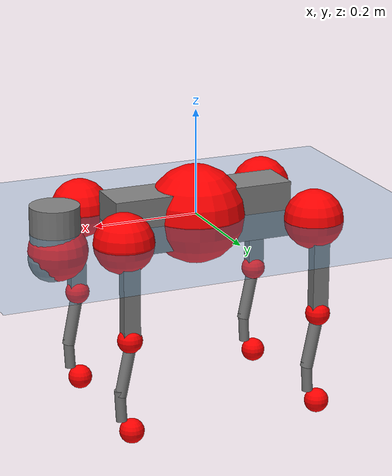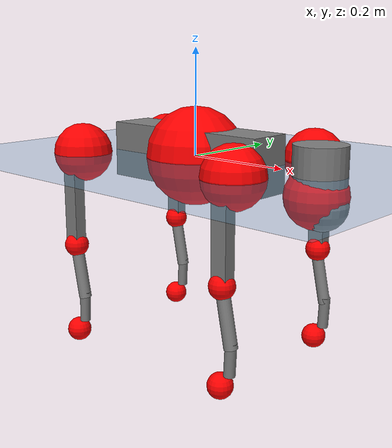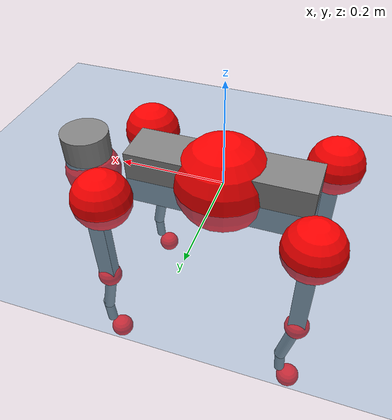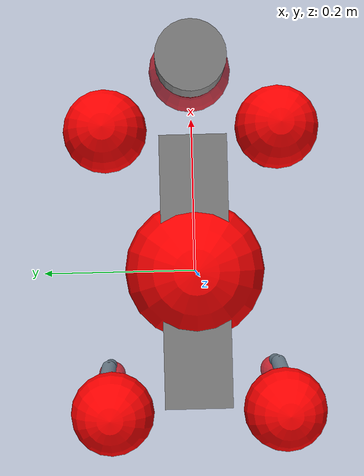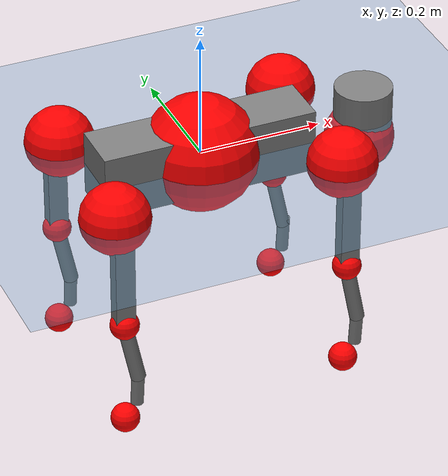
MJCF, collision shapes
<mujoco model="go2">
  <compiler angle="radian" assetdir="assets" balanceinertia="true" inertiafromgeom="false"/>

  <option timestep="0.005" density="1.2" viscosity="2e-05"/>

  <size nkey="1"/>

  <visual>
    <quality shadowsize="8192"/>
    <map shadowclip="0.5"/>
  </visual>

  <default>
    <default class="/">
      <geom contype="0" conaffinity="0" group="1" solref="-1000 -80"/>
      <site size="0.01 0.005 0.005" group="5"/>
      <general forcelimited="true" biastype="affine" gainprm="20" biasprm="0 -20 -0.5"/>
      <default class="go2">
        <joint armature="0.01" damping="0.01" frictionloss="0.2"/>
        <geom condim="1" margin="0.001"/>
        <default class="visual">
          <geom type="mesh" group="2"/>
        </default>
        <default class="collision">
          <geom group="3"/>
          <default class="foot">
            <geom size="0.022 0 0" condim="6" priority="1" friction="0.8 0.02 0.01" solimp="0.015 1 0.022"/>
          </default>
        </default>
        <default class="reward_collision_sphere">
          <geom group="5" rgba="1 0 0 1"/>
        </default>
      </default>
    </default>
  </default>

  <asset>
    <texture type="skybox" colorspace="auto" name="//unnamed_texture_0" builtin="gradient" rgb1="0.95 0.95 0.95" rgb2="0.95 0.95 0.95" width="100" height="600"/>
    <texture type="2d" colorspace="auto" name="texplane" builtin="checker" rgb1="0.345 0.575 0.748" rgb2="0.345 0.575 0.748" markrgb="1 1 1" width="512" height="512"/>
    <material name="MatPlane" class="/" texture="texplane" texuniform="true" texrepeat="2 2" specular="0.9"/>
    <material name="metal" class="/" rgba="0.9 0.95 0.95 1"/>
    <material name="black" class="/" rgba="0 0 0 1"/>
    <material name="white" class="/"/>
    <material name="gray" class="/" rgba="0.671705 0.692426 0.77427 1"/>
    <mesh name="base_0" class="/" file="base_0.obj"/>
    <mesh name="base_1" class="/" file="base_1.obj"/>
    <mesh name="base_2" class="/" file="base_2.obj"/>
    <mesh name="base_3" class="/" file="base_3.obj"/>
    <mesh name="base_4" class="/" file="base_4.obj"/>
    <mesh name="hip_0" class="/" file="hip_0.obj"/>
    <mesh name="hip_1" class="/" file="hip_1.obj"/>
    <mesh name="thigh_0" class="/" file="thigh_0.obj"/>
    <mesh name="thigh_1" class="/" file="thigh_1.obj"/>
    <mesh name="thigh_mirror_0" class="/" file="thigh_mirror_0.obj"/>
    <mesh name="thigh_mirror_1" class="/" file="thigh_mirror_1.obj"/>
    <mesh name="calf_0" class="/" file="calf_0.obj"/>
    <mesh name="calf_1" class="/" file="calf_1.obj"/>
    <mesh name="calf_mirror_0" class="/" file="calf_mirror_0.obj"/>
    <mesh name="calf_mirror_1" class="/" file="calf_mirror_1.obj"/>
    <mesh name="foot" class="/" file="foot.obj"/>
  </asset>

  <worldbody>
    <geom name="floor" class="/" size="100 100 0.125" type="plane" group="0" material="MatPlane"/>
    <light name="toplight_shadow" class="/" pos="0 0 5" dir="0.0990148 0.0990148 -0.990148" type="directional" ambient="0.04 0.04 0.04" diffuse="0.55 0.55 0.55" specular="0.12 0.12 0.12"/>
    <light name="toplight_fill" class="/" pos="0 0 5" dir="0.0990148 0.0990148 -0.990148" type="directional" castshadow="false" ambient="0.04 0.04 0.04" diffuse="0.3 0.3 0.3" specular="0.08 0.08 0.08"/>
    <body name="trunk" childclass="go2" pos="2.17297e-05 1.31051e-05 0.000864011" quat="1 2.7919e-05 -4.58437e-05 -3.68298e-05">
      <inertial pos="0.0200973 -0.000217785 -0.00528745" quat="-0.000324759 0.713446 -0.00184236 0.700708" mass="5.62461" diaginertia="0.0928603 0.091016 0.00992007"/>
      <joint name="//unnamed_joint_0" type="free" armature="0" damping="0" frictionloss="0"/>
      <geom name="//unnamed_geom_1" class="visual" material="black" mesh="base_0"/>
      <geom name="//unnamed_geom_2" class="visual" material="black" mesh="base_1"/>
      <geom name="//unnamed_geom_3" class="visual" material="black" mesh="base_2"/>
      <geom name="//unnamed_geom_4" class="visual" material="white" mesh="base_3"/>
      <geom name="//unnamed_geom_5" class="visual" material="gray" mesh="base_4"/>
      <geom name="trunk_1" class="collision" size="0.174998 0.0434937 0.0530298" type="box"/>
      <geom name="trunk_2" class="collision" size="0.0465173 0.0418656" pos="0.277058 0 0.00834058" type="cylinder"/>
      <geom name="trunk_3" class="collision" size="0.0437263" pos="0.284835 0 -0.0500435"/>
      <geom name="//unnamed_geom_9" class="reward_collision_sphere" size="0.0930347"/>
      <geom name="//unnamed_geom_10" class="reward_collision_sphere" size="0.0558208" pos="0.272197 0 -0.0375326"/>
      <site name="imu" pos="-0.0235497 0.00312692 0.0359712" size="0.00930347"/>
      <camera name="track" pos="0 -1.9697 0" quat="0.707107 0.707107 0 0" mode="trackcom"/>
      <camera name="ego_camera" pos="0.303306 0 0.0375326" quat="-0.5 -0.5 0.5 0.5"/>
      <body name="FL_hip" pos="0.187611 0.0464841 0.00186272" quat="1 -6.34125e-05 -0.000246172 -0.000102784">
        <inertial pos="-0.00463793 0.00205614 0.000417411" quat="0.497022 0.499259 0.505447 0.498229" mass="0.539704" diaginertia="0.000762781 0.000553032 0.000191002"/>
        <joint name="FL_hip_joint" pos="0 0 0" axis="0.999994 -0.00296256 0.00183523" stiffness="0.0017776" range="-1.04771 1.04766" armature="0.00896901" damping="0.00450549" frictionloss="0.192051"/>
        <geom name="//unnamed_geom_11" class="visual" material="metal" mesh="hip_0"/>
        <geom name="//unnamed_geom_12" class="visual" material="gray" mesh="hip_1"/>
        <geom name="//unnamed_geom_13" class="collision" size="0.042796 0.0186069" pos="0 0.0787879 0" quat="0.707107 0.707107 0 0" type="cylinder"/>
        <geom name="//unnamed_geom_14" class="reward_collision_sphere" size="0.0558208" pos="0 0.0689394 0"/>
        <body name="FL_thigh" pos="-0.000438649 0.0943801 0.00152907" quat="1 -0.00020077 -3.75034e-05 4.93972e-05">
          <inertial pos="-0.00405809 -0.0217191 -0.0266398" quat="0.829531 0.0847578 -0.0200588 0.551627" mass="0.937691" diaginertia="0.00518382 0.00538567 0.000355339"/>
          <joint name="FL_thigh_joint" pos="0 0 0" axis="-9.79883e-05 1 -0.000671307" stiffness="0.00376085" range="-1.55086 3.48677" armature="0.00949855" damping="0.00752037" frictionloss="0.183369"/>
          <geom name="//unnamed_geom_15" class="visual" material="metal" mesh="thigh_0"/>
          <geom name="//unnamed_geom_16" class="visual" material="gray" mesh="thigh_1"/>
          <geom name="//unnamed_geom_17" class="collision" size="0.0990819 0.0113967 0.0158159" pos="0 0 -0.0888272" quat="0.707107 0 0.707107 0" type="box"/>
          <body name="FL_calf" pos="0.000260167 -0.00144019 -0.178357" quat="1 0.000101456 -4.12642e-05 -3.21083e-05">
            <inertial pos="0.00647782 -0.000489291 -0.117213" quat="0.710543 0.00162514 -0.0044261 0.703638" mass="0.195939" diaginertia="0.00129407 0.00136481 2.16041e-05"/>
            <joint name="FL_calf_joint" pos="0 0 0" axis="0.00583098 0.999982 0.001695" stiffness="0.000685579" range="-2.72795 -0.840986" armature="0.00926545" damping="0" frictionloss="0.194209"/>
            <geom name="//unnamed_geom_18" class="visual" material="gray" mesh="calf_0"/>
            <geom name="//unnamed_geom_19" class="visual" material="black" mesh="calf_1"/>
            <geom name="FL_calf0" class="collision" size="0.0111642 0.0558208" pos="0.00777707 0 -0.0500435" quat="0.994493 0 -0.104807 0" type="cylinder"/>
            <geom name="//unnamed_geom_21" class="collision" size="0.0102338 0.0302363" pos="0.0194427 0 -0.123441" quat="0.999688 0 0.0249974 0" type="cylinder"/>
            <geom name="//unnamed_geom_22" class="visual" pos="0 0 -0.177654" quat="1 0 0 0" material="black" mesh="foot"/>
            <geom name="FL_foot" class="foot" size="0.0171398" pos="-0.00194427 0 -0.177654"/>
            <geom name="//unnamed_geom_24" class="reward_collision_sphere" size="0.0232587"/>
            <geom name="//unnamed_geom_25" class="reward_collision_sphere" size="0.0232587" pos="-0.00194427 0 -0.177654"/>
            <site name="FL_foot" class="foot" pos="-0.00194427 0 -0.177654" size="0.00930347"/>
          </body>
        </body>
      </body>
      <body name="FR_hip" pos="0.188387 -0.0444505 0.000133375" quat="1 4.95564e-05 0.000420606 0.000129133">
        <inertial pos="-0.00511765 -0.00207276 -0.000665933" quat="0.498164 0.505914 0.49933 0.496542" mass="0.551203" diaginertia="0.000773414 0.000557605 0.000193817"/>
        <joint name="FR_hip_joint" pos="0 0 0" axis="1 0.000328433 -0.000396286" range="-1.06491 1.05214" armature="0.00924316" damping="0.0144965" frictionloss="0.193872"/>
        <geom name="//unnamed_geom_26" class="visual" pos="0 1.31363e-09 5.63441e-08" quat="4.63268e-05 1 0 0" material="metal" mesh="hip_0"/>
        <geom name="//unnamed_geom_27" class="visual" pos="0 2.12954e-09 -1.39361e-07" quat="4.63268e-05 1 0 0" material="gray" mesh="hip_1"/>
        <geom name="//unnamed_geom_28" class="collision" size="0.042796 0.0186069" pos="0 -0.0787879 0" quat="0.707107 0.707107 0 0" type="cylinder"/>
        <geom name="//unnamed_geom_29" class="reward_collision_sphere" size="0.0558208" pos="0 -0.0689394 0"/>
        <body name="FR_thigh" pos="0.000661838 -0.0943538 0.000683958" quat="1 -6.11874e-05 6.01077e-05 -2.62049e-05">
          <inertial pos="-0.00377272 0.0221027 -0.02719" quat="0.551104 -0.0199755 0.0851727 0.829838" mass="0.937266" diaginertia="0.00520322 0.00544863 0.000357851"/>
          <joint name="FR_thigh_joint" pos="0 0 0" axis="-0.00129382 -0.999994 0.00330301" range="-3.48218 1.57282" armature="0.00940335" damping="0.0152678" frictionloss="0.182054"/>
          <geom name="//unnamed_geom_30" class="visual" material="metal" mesh="thigh_mirror_0"/>
          <geom name="//unnamed_geom_31" class="visual" material="gray" mesh="thigh_mirror_1"/>
          <geom name="//unnamed_geom_32" class="collision" size="0.0990819 0.0113967 0.0158159" pos="0 0 -0.0888272" quat="0.707107 0 0.707107 0" type="box"/>
          <body name="FR_calf" pos="-0.000410689 -8.16835e-05 -0.178057" quat="1 -0.000158526 -4.03145e-06 -0.000102634">
            <inertial pos="0.0059355 0.000207104 -0.118025" quat="0.702031 -0.0038014 0.00190984 0.712134" mass="0.192606" diaginertia="0.00127973 0.00135073 2.13627e-05"/>
            <joint name="FR_calf_joint" pos="0 0 0" axis="0.00242673 -0.999979 0.00598137" range="0.844893 2.73416" armature="0.00936833" damping="0.00687465" frictionloss="0.181753"/>
            <geom name="//unnamed_geom_33" class="visual" material="gray" mesh="calf_mirror_0"/>
            <geom name="//unnamed_geom_34" class="visual" material="black" mesh="calf_mirror_1"/>
            <geom name="FR_calf0" class="collision" size="0.0120945 0.0558208" pos="0.00972133 0 -0.0500435" quat="0.995004 0 -0.0998334 0" type="cylinder"/>
            <geom name="//unnamed_geom_36" class="collision" size="0.0102338 0.0302363" pos="0.0194427 0 -0.123441" quat="0.999688 0 0.0249974 0" type="cylinder"/>
            <geom name="//unnamed_geom_37" class="visual" pos="0 0 -0.177654" quat="1 0 0 0" material="black" mesh="foot"/>
            <geom name="FR_foot" class="foot" size="0.021235" pos="-0.00194427 0 -0.177654"/>
            <geom name="//unnamed_geom_39" class="reward_collision_sphere" size="0.0232587"/>
            <geom name="//unnamed_geom_40" class="reward_collision_sphere" size="0.0232587" pos="-0.00194427 0 -0.177654"/>
            <site name="FR_foot" class="foot" pos="-0.00194427 0 -0.177654" size="0.00930347"/>
          </body>
        </body>
      </body>
      <body name="RL_hip" pos="-0.188596 0.0454434 -0.000617026" quat="1 -0.000139288 -7.96895e-05 7.98783e-05">
        <inertial pos="0.00562711 0.00290124 0.000389209" quat="0.504136 0.496413 0.499441 0.49998" mass="0.541803" diaginertia="0.00076991 0.00054608 0.000194122"/>
        <joint name="RL_hip_joint" pos="0 0 0" axis="-0.999877 -0.0148173 -0.0051478" stiffness="0.00261278" range="-1.0401 1.05431" armature="0.00934117" damping="0.0167443" frictionloss="0.181282"/>
        <geom name="//unnamed_geom_41" class="visual" pos="-1.20285e-09 0 -2.35787e-07" quat="4.63268e-05 0 1 0" material="metal" mesh="hip_0"/>
        <geom name="//unnamed_geom_42" class="visual" pos="-1.94997e-09 0 -2.09109e-07" quat="4.63268e-05 0 1 0" material="gray" mesh="hip_1"/>
        <geom name="//unnamed_geom_43" class="collision" size="0.042796 0.0186069" pos="0 0.0787879 0" quat="0.707107 0.707107 0 0" type="cylinder"/>
        <geom name="//unnamed_geom_44" class="reward_collision_sphere" size="0.0558208" pos="0 0.0689394 0"/>
        <body name="RL_thigh" pos="0.000159717 0.0945927 -0.000552165" quat="1 -0.000283473 4.16996e-05 -9.57044e-05">
          <inertial pos="-0.003797 -0.020887 -0.027305" quat="0.829691 0.0845689 -0.020117 0.551414" mass="0.934136" diaginertia="0.0051416 0.00544581 0.00035226"/>
          <joint name="RL_thigh_joint" pos="0 0 0" axis="-0.000576019 0.999998 0.00180662" range="-0.520528 4.54181" armature="0.0093372" damping="0.00940556" frictionloss="0.185538"/>
          <geom name="//unnamed_geom_45" class="visual" material="metal" mesh="thigh_0"/>
          <geom name="//unnamed_geom_46" class="visual" material="gray" mesh="thigh_1"/>
          <geom name="//unnamed_geom_47" class="collision" size="0.0990819 0.0113967 0.0158159" pos="0 0 -0.0888272" quat="0.707107 0 0.707107 0" type="box"/>
          <body name="RL_calf" pos="-0.000340313 -0.000796969 -0.17765" quat="1 0.000161067 9.04905e-05 0.000180703">
            <inertial pos="0.00527686 -0.000885744 -0.116999" quat="0.710697 0.00153321 -0.00447077 0.703482" mass="0.197024" diaginertia="0.00129844 0.00136302 2.18092e-05"/>
            <joint name="RL_calf_joint" pos="0 0 0" axis="0.00288489 0.999974 -0.00665776" stiffness="1.68404e-05" range="-2.72108 -0.851723" armature="0.00936529" damping="0.00077173" frictionloss="0.182547"/>
            <geom name="//unnamed_geom_48" class="visual" material="gray" mesh="calf_0"/>
            <geom name="//unnamed_geom_49" class="visual" material="black" mesh="calf_1"/>
            <geom name="RL_calf0" class="collision" size="0.0120945 0.0558208" pos="0.00972133 0 -0.0500435" quat="0.995004 0 -0.0998334 0" type="cylinder"/>
            <geom name="//unnamed_geom_51" class="collision" size="0.0102338 0.0302363" pos="0.0194427 0 -0.123441" quat="0.999688 0 0.0249974 0" type="cylinder"/>
            <geom name="//unnamed_geom_52" class="visual" pos="0 0 -0.177654" quat="1 0 0 0" material="black" mesh="foot"/>
            <geom name="RL_foot" class="foot" size="0.0178996" pos="-0.00194427 0 -0.177654"/>
            <geom name="//unnamed_geom_54" class="reward_collision_sphere" size="0.0232587"/>
            <geom name="//unnamed_geom_55" class="reward_collision_sphere" size="0.0232587" pos="-0.00194427 0 -0.177654"/>
            <site name="RL_foot" class="foot" pos="-0.00194427 0 -0.177654" size="0.00930347"/>
          </body>
        </body>
      </body>
      <body name="RR_hip" pos="-0.188117 -0.0475826 -0.000517299" quat="1 8.22313e-05 -3.17363e-05 -4.48391e-05">
        <inertial pos="0.00558841 -0.00226824 3.42064e-05" quat="0.498536 0.496161 0.500115 0.505145" mass="0.548467" diaginertia="0.000767859 0.000561028 0.000195927"/>
        <joint name="RR_hip_joint" pos="0 0 0" axis="-0.999999 0.000627922 0.00107845" range="-1.0349 1.0556" armature="0.00952726" damping="0.00549972" frictionloss="0.178552"/>
        <geom name="//unnamed_geom_56" class="visual" pos="1.20329e-09 1.31363e-09 -2.92131e-07" quat="2.14617e-09 4.63268e-05 4.63268e-05 -1" material="metal" mesh="hip_0"/>
        <geom name="//unnamed_geom_57" class="visual" pos="1.94888e-09 2.12954e-09 -6.97488e-08" quat="2.14617e-09 4.63268e-05 4.63268e-05 -1" material="gray" mesh="hip_1"/>
        <geom name="//unnamed_geom_58" class="collision" size="0.042796 0.0186069" pos="0 -0.0787879 0" quat="0.707107 0.707107 0 0" type="cylinder"/>
        <geom name="//unnamed_geom_59" class="reward_collision_sphere" size="0.0558208" pos="0 -0.0689394 0"/>
        <body name="RR_thigh" pos="0.000318475 -0.0948626 -0.00203907" quat="1 -2.88857e-05 -3.39694e-05 -3.21184e-05">
          <inertial pos="-0.00350198 0.0225729 -0.0280305" quat="0.554794 -0.0198984 0.0842418 0.827472" mass="0.921087" diaginertia="0.00514261 0.00536274 0.000353649"/>
          <joint name="RR_thigh_joint" pos="0 0 0" axis="0.00592053 -0.999954 -0.00759876" range="-4.53907 0.52769" armature="0.0095365" damping="0.0157132" frictionloss="0.189725"/>
          <geom name="//unnamed_geom_60" class="visual" material="metal" mesh="thigh_mirror_0"/>
          <geom name="//unnamed_geom_61" class="visual" material="gray" mesh="thigh_mirror_1"/>
          <geom name="//unnamed_geom_62" class="collision" size="0.0990819 0.0113967 0.0158159" pos="0 0 -0.0888272" quat="0.707107 0 0.707107 0" type="box"/>
          <body name="RR_calf" pos="0.00124374 -4.07149e-05 -0.178405" quat="1 0.000125998 -0.000174516 0.000231976">
            <inertial pos="0.00555001 0.000474061 -0.118084" quat="0.703179 -0.00454739 0.00135873 0.710997" mass="0.196185" diaginertia="0.00130594 0.00135686 2.17228e-05"/>
            <joint name="RR_calf_joint" pos="0 0 0" axis="-0.00128745 -0.99998 -0.00620468" range="0.823507 2.71822" armature="0.00933895" damping="0.00953106" frictionloss="0.185999"/>
            <geom name="//unnamed_geom_63" class="visual" material="gray" mesh="calf_mirror_0"/>
            <geom name="//unnamed_geom_64" class="visual" material="black" mesh="calf_mirror_1"/>
            <geom name="RR_calf0" class="collision" size="0.0120945 0.0558208" pos="0.00972133 0 -0.0500435" quat="0.995004 0 -0.0998334 0" type="cylinder"/>
            <geom name="//unnamed_geom_66" class="collision" size="0.0102338 0.0302363" pos="0.0194427 0 -0.123441" quat="0.999688 0 0.0249974 0" type="cylinder"/>
            <geom name="//unnamed_geom_67" class="visual" pos="0 0 -0.177654" quat="1 0 0 0" material="black" mesh="foot"/>
            <geom name="RR_foot" class="foot" size="0.0211973" pos="-0.00194427 0 -0.177654"/>
            <geom name="//unnamed_geom_69" class="reward_collision_sphere" size="0.0232587"/>
            <geom name="//unnamed_geom_70" class="reward_collision_sphere" size="0.0232587" pos="-0.00194427 0 -0.177654"/>
            <site name="RR_foot" class="foot" pos="-0.00194427 0 -0.177654" size="0.00930347"/>
          </body>
        </body>
      </body>
    </body>
  </worldbody>

  <contact>
    <pair class="/" geom1="floor" geom2="FL_foot" name="//unnamed_contact_0"/>
    <pair class="/" geom1="floor" geom2="FR_foot" name="//unnamed_contact_1"/>
    <pair class="/" geom1="floor" geom2="RL_foot" name="//unnamed_contact_2"/>
    <pair class="/" geom1="floor" geom2="RR_foot" name="//unnamed_contact_3"/>
  </contact>

  <actuator>
    <general name="FL_hip" class="/" joint="FL_hip_joint" forcerange="-22.5531 22.5531" gainprm="18.6797" biasprm="0 -18.6797 -0.466471"/>
    <general name="FL_thigh" class="/" joint="FL_thigh_joint" forcerange="-21.7264 21.7264" gainprm="18.6797" biasprm="0 -18.6797 -0.466471"/>
    <general name="FL_calf" class="/" joint="FL_calf_joint" forcerange="-42.7905 42.7905" gainprm="18.6797" biasprm="0 -18.6797 -0.466471"/>
    <general name="FR_hip" class="/" joint="FR_hip_joint" forcerange="-21.6334 21.6334" gainprm="18.6797" biasprm="0 -18.6797 -0.466471"/>
    <general name="FR_thigh" class="/" joint="FR_thigh_joint" forcerange="-22.1473 22.1473" gainprm="18.6797" biasprm="0 -18.6797 -0.466471"/>
    <general name="FR_calf" class="/" joint="FR_calf_joint" forcerange="-42.3161 42.3161" gainprm="18.6797" biasprm="0 -18.6797 -0.466471"/>
    <general name="RL_hip" class="/" joint="RL_hip_joint" forcerange="-21.3431 21.3431" gainprm="18.6797" biasprm="0 -18.6797 -0.466471"/>
    <general name="RL_thigh" class="/" joint="RL_thigh_joint" forcerange="-22.072 22.072" gainprm="18.6797" biasprm="0 -18.6797 -0.466471"/>
    <general name="RL_calf" class="/" joint="RL_calf_joint" forcerange="-43.0723 43.0723" gainprm="18.6797" biasprm="0 -18.6797 -0.466471"/>
    <general name="RR_hip" class="/" joint="RR_hip_joint" forcerange="-21.7633 21.7633" gainprm="18.6797" biasprm="0 -18.6797 -0.466471"/>
    <general name="RR_thigh" class="/" joint="RR_thigh_joint" forcerange="-21.8828 21.8828" gainprm="18.6797" biasprm="0 -18.6797 -0.466471"/>
    <general name="RR_calf" class="/" joint="RR_calf_joint" forcerange="-42.0425 42.0425" gainprm="18.6797" biasprm="0 -18.6797 -0.466471"/>
  </actuator>

  <sensor>
    <gyro site="imu" name="imu_angular_velocity"/>
    <velocimeter site="imu" name="imu_linear_velocity"/>
    <framelinvel objtype="site" objname="FL_foot" name="FL_foot_global_linear_velocity"/>
    <framelinvel objtype="site" objname="FR_foot" name="FR_foot_global_linear_velocity"/>
    <framelinvel objtype="site" objname="RL_foot" name="RL_foot_global_linear_velocity"/>
    <framelinvel objtype="site" objname="RR_foot" name="RR_foot_global_linear_velocity"/>
  </sensor>

  <keyframe>
    <key name="home" qpos="0 0 0.325 1 0 0 0 0.1 0.8 -1.5 -0.1 -0.8 1.5 -0.1 0.8 -1.5 0.1 -0.8 1.5"/>
  </keyframe>
</mujoco>
